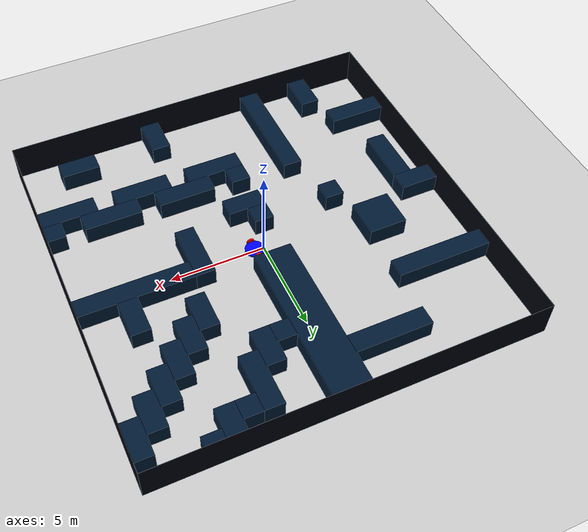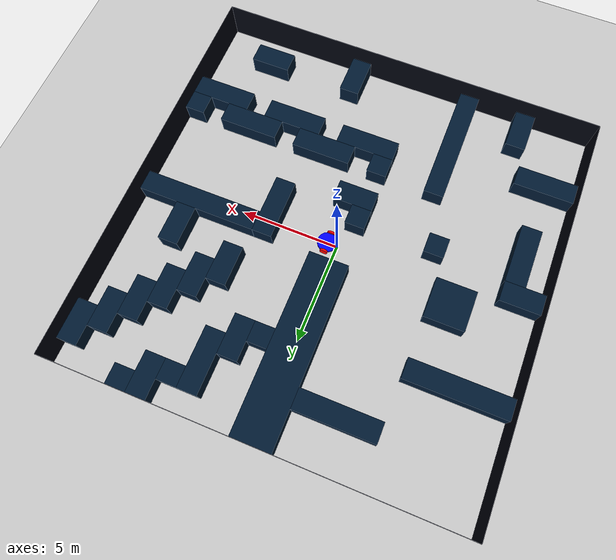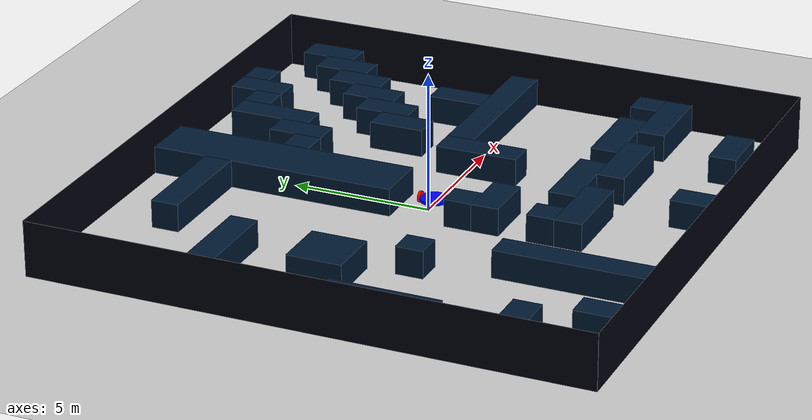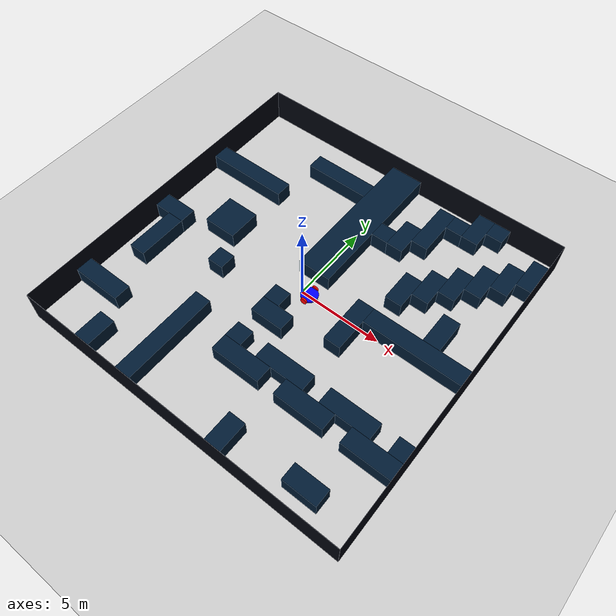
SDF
<sdf version="1.8">
 <world name="maze">
  <model name="ground_plane">
   <static>1</static>
   <link name="link">
    <collision name="collision">
     <geometry><plane><normal>0 0 1</normal><size>100 100</size></plane></geometry>
    </collision>
    <visual name="visual">
     <geometry><plane><normal>0 0 1</normal><size>100 100</size></plane></geometry>
     <material>
      <ambient>0.8 0.8 0.8 1</ambient>
      <diffuse>0.8 0.8 0.8 1</diffuse>
      <specular>0.8 0.8 0.8 1</specular>
     </material>
     <plugin name="__default__" filename="__default__"/>
    </visual>
   </link>
   <plugin name="__default__" filename="__default__"/>
  </model>
  <model name="border">
   <pose>0 0 1 0 0 0</pose>
   <static>true</static>
   <link name="wall1">
    <pose>-10.005 0 0 0 0 0</pose>
    <static>true</static>
    <collision name="wall1_collision"><geometry><box><size>0.01 20 2</size></box></geometry></collision>
    <visual name="wall1_visual">
     <geometry><box><size>0.01 20 2</size></box></geometry>
     <material>
      <ambient>0.1 0.1 0.1 1</ambient>
      <diffuse>0 0.01 0.05 1</diffuse>
      <specular>0 0.01 0.05 1</specular>
     </material>
    </visual>
   </link>
   <link name="wall2">
    <pose>10.005 0 0 0 0 0</pose>
    <static>true</static>
    <collision name="wall2_collision"><geometry><box><size>0.01 20 2</size></box></geometry></collision>
    <visual name="wall2_visual">
     <geometry><box><size>0.01 20 2</size></box></geometry>
     <material>
      <ambient>0.1 0.1 0.1 1</ambient>
      <diffuse>0 0.01 0.05 1</diffuse>
      <specular>0 0.01 0.05 1</specular>
     </material>
    </visual>
   </link>
   <link name="wall3">
    <pose>0 10.005 0 0 0 0</pose>
    <static>true</static>
    <collision name="wall3_collision"><geometry><box><size>20 0.01 2</size></box></geometry></collision>
    <visual name="wall3_visual">
     <geometry><box><size>20 0.01 2</size></box></geometry>
     <material>
      <ambient>0.1 0.1 0.1 1</ambient>
      <diffuse>0 0.01 0.05 1</diffuse>
      <specular>0 0.01 0.05 1</specular>
     </material>
    </visual>
   </link>
   <link name="wall4">
    <pose>0 -10.005 0 0 0 0</pose>
    <static>true</static>
    <collision name="wall4_collision">
     <geometry><box><size>20 0.01 2</size></box></geometry>
     <material>
      <ambient>0.1 0.1 0.1 1</ambient>
      <diffuse>0 0.01 0.05 1</diffuse>
      <specular>0 0.01 0.05 1</specular>
     </material>
    </collision>
    <visual name="wall4_visual">
     <geometry><box><size>20 0.01 2</size></box></geometry>
     <material>
      <ambient>0.1 0.1 0.1 1</ambient>
      <diffuse>0 0.01 0.05 1</diffuse>
      <specular>0 0.01 0.05 1</specular>
     </material>
    </visual>
   </link>
  </model>
  <model name="obstacles">
   <pose>0 0 0.5 0 0 0</pose>
   <static>true</static>
   <link name="wall1">
    <pose>-6.5 -9 0 0 0 0</pose>
    <static>true</static>
    <collision name="wall1_collision"><geometry><box><size>1 2 1</size></box></geometry></collision>
    <visual name="wall1_visual">
     <geometry><box><size>1 2 1</size></box></geometry>
     <material>
      <ambient>0.1 0.1 0.1 1</ambient>
      <diffuse>0 0.1 0.2 1</diffuse>
      <specular>0 0.01 0.05 1</specular>
     </material>
    </visual>
   </link>
   <link name="wall2">
    <pose>-8.5 -6.5 0 0 0 0</pose>
    <static>true</static>
    <collision name="wall2_collision"><geometry><box><size>3 1 1</size></box></geometry></collision>
    <visual name="wall2_visual">
     <geometry><box><size>3 1 1</size></box></geometry>
     <material>
      <ambient>0.1 0.1 0.1 1</ambient>
      <diffuse>0 0.1 0.2 1</diffuse>
      <specular>0 0.01 0.05 1</specular>
     </material>
    </visual>
   </link>
   <link name="wall3">
    <pose>-3.5 -7 0 0 0 0</pose>
    <static>true</static>
    <collision name="wall3_collision"><geometry><box><size>1 6 1</size></box></geometry></collision>
    <visual name="wall3_visual">
     <geometry><box><size>1 6 1</size></box></geometry>
     <material>
      <ambient>0.1 0.1 0.1 1</ambient>
      <diffuse>0 0.1 0.2 1</diffuse>
      <specular>0 0.01 0.05 1</specular>
     </material>
    </visual>
   </link>
   <link name="wall4">
    <pose>2.5 -9 0 0 0 0</pose>
    <static>true</static>
    <collision name="wall4_collision"><geometry><box><size>1 2 1</size></box></geometry></collision>
    <visual name="wall4_visual">
     <geometry><box><size>1 2 1</size></box></geometry>
     <material>
      <ambient>0.1 0.1 0.1 1</ambient>
      <diffuse>0 0.1 0.2 1</diffuse>
      <specular>0 0.01 0.05 1</specular>
     </material>
    </visual>
   </link>
   <link name="wall5">
    <pose>7 -8.5 0 0 0 0</pose>
    <static>true</static>
    <collision name="wall5_collision"><geometry><box><size>2 1 1</size></box></geometry></collision>
    <visual name="wall5_visual">
     <geometry><box><size>2 1 1</size></box></geometry>
     <material>
      <ambient>0.1 0.1 0.1 1</ambient>
      <diffuse>0 0.1 0.2 1</diffuse>
      <specular>0 0.01 0.05 1</specular>
     </material>
    </visual>
   </link>
   <link name="wall6">
    <pose>-9 -0.5 0 0 0 0</pose>
    <static>true</static>
    <collision name="wall6_collision"><geometry><box><size>2 1 1</size></box></geometry></collision>
    <visual name="wall6_visual">
     <geometry><box><size>2 1 1</size></box></geometry>
     <material>
      <ambient>0.1 0.1 0.1 1</ambient>
      <diffuse>0 0.1 0.2 1</diffuse>
      <specular>0 0.01 0.05 1</specular>
     </material>
    </visual>
   </link>
   <link name="wall7">
    <pose>-8.5 -2.5 0 0 0 0</pose>
    <static>true</static>
    <collision name="wall7_collision"><geometry><box><size>1 3 1</size></box></geometry></collision>
    <visual name="wall7_visual">
     <geometry><box><size>1 3 1</size></box></geometry>
     <material>
      <ambient>0.1 0.1 0.1 1</ambient>
      <diffuse>0 0.1 0.2 1</diffuse>
      <specular>0 0.01 0.05 1</specular>
     </material>
    </visual>
   </link>
   <link name="wall8">
    <pose>-4.5 -1.5 0 0 0 0</pose>
    <static>true</static>
    <collision name="wall8_collision"><geometry><box><size>1 1 1</size></box></geometry></collision>
    <visual name="wall8_visual">
     <geometry><box><size>1 1 1</size></box></geometry>
     <material>
      <ambient>0.1 0.1 0.1 1</ambient>
      <diffuse>0 0.1 0.2 1</diffuse>
      <specular>0 0.01 0.05 1</specular>
     </material>
    </visual>
   </link>
   <link name="wall9">
    <pose>-6 1 0 0 0 0</pose>
    <static>true</static>
    <collision name="wall9_collision"><geometry><box><size>2 2 1</size></box></geometry></collision>
    <visual name="wall9_visual">
     <geometry><box><size>2 2 1</size></box></geometry>
     <material>
      <ambient>0.1 0.1 0.1 1</ambient>
      <diffuse>0 0.1 0.2 1</diffuse>
      <specular>0 0.01 0.05 1</specular>
     </material>
    </visual>
   </link>
   <link name="wall10">
    <pose>-7.5 4.5 0 0 0 0</pose>
    <static>true</static>
    <collision name="wall10_collision"><geometry><box><size>5 1 1</size></box></geometry></collision>
    <visual name="wall10_visual">
     <geometry><box><size>5 1 1</size></box></geometry>
     <material>
      <ambient>0.1 0.1 0.1 1</ambient>
      <diffuse>0 0.1 0.2 1</diffuse>
      <specular>0 0.01 0.05 1</specular>
     </material>
    </visual>
   </link>
   <link name="wall11">
    <pose>-3 7.5 0 0 0 0</pose>
    <static>true</static>
    <collision name="wall11_collision"><geometry><box><size>4 1 1</size></box></geometry></collision>
    <visual name="wall11_visual">
     <geometry><box><size>4 1 1</size></box></geometry>
     <material>
      <ambient>0.1 0.1 0.1 1</ambient>
      <diffuse>0 0.1 0.2 1</diffuse>
      <specular>0 0.01 0.05 1</specular>
     </material>
    </visual>
   </link>
   <link name="wall12">
    <pose>0 5.5 0 0 0 0</pose>
    <static>true</static>
    <collision name="wall12_collision"><geometry><box><size>2 9 1</size></box></geometry></collision>
    <visual name="wall12_visual">
     <geometry><box><size>2 9 1</size></box></geometry>
     <material>
      <ambient>0.1 0.1 0.1 1</ambient>
      <diffuse>0 0.1 0.2 1</diffuse>
      <specular>0 0.01 0.05 1</specular>
     </material>
    </visual>
   </link>
   <link name="wall13">
    <pose>0 -2.5 0 0 0 0</pose>
    <static>true</static>
    <collision name="wall13_collision"><geometry><box><size>2 1 1</size></box></geometry></collision>
    <visual name="wall13_visual">
     <geometry><box><size>2 1 1</size></box></geometry>
     <material>
      <ambient>0.1 0.1 0.1 1</ambient>
      <diffuse>0 0.1 0.2 1</diffuse>
      <specular>0 0.01 0.05 1</specular>
     </material>
    </visual>
   </link>
   <link name="wall14">
    <pose>-0.5 -1.5 0 0 0 0</pose>
    <static>true</static>
    <collision name="wall14_collision"><geometry><box><size>1 1 1</size></box></geometry></collision>
    <visual name="wall14_visual">
     <geometry><box><size>1 1 1</size></box></geometry>
     <material>
      <ambient>0.1 0.1 0.1 1</ambient>
      <diffuse>0 0.1 0.2 1</diffuse>
      <specular>0 0.01 0.05 1</specular>
     </material>
    </visual>
   </link>
   <link name="wall15">
    <pose>-0.5 -4.5 0 0 0 0</pose>
    <static>true</static>
    <collision name="wall15_collision"><geometry><box><size>1 1 1</size></box></geometry></collision>
    <visual name="wall15_visual">
     <geometry><box><size>1 1 1</size></box></geometry>
     <material>
      <ambient>0.1 0.1 0.1 1</ambient>
      <diffuse>0 0.1 0.2 1</diffuse>
      <specular>0 0.01 0.05 1</specular>
     </material>
    </visual>
   </link>
   <link name="wall16">
    <pose>0.5 -5.5 0 0 0 0</pose>
    <static>true</static>
    <collision name="wall16_collision"><geometry><box><size>3 1 1</size></box></geometry></collision>
    <visual name="wall16_visual">
     <geometry><box><size>3 1 1</size></box></geometry>
     <material>
      <ambient>0.1 0.1 0.1 1</ambient>
      <diffuse>0 0.1 0.2 1</diffuse>
      <specular>0 0.01 0.05 1</specular>
     </material>
    </visual>
   </link>
   <link name="wall17">
    <pose>2.5 -4.5 0 0 0 0</pose>
    <static>true</static>
    <collision name="wall17_collision"><geometry><box><size>3 1 1</size></box></geometry></collision>
    <visual name="wall17_visual">
     <geometry><box><size>3 1 1</size></box></geometry>
     <material>
      <ambient>0.1 0.1 0.1 1</ambient>
      <diffuse>0 0.1 0.2 1</diffuse>
      <specular>0 0.01 0.05 1</specular>
     </material>
    </visual>
   </link>
   <link name="wall18">
    <pose>4.5 -5.5 0 0 0 0</pose>
    <static>true</static>
    <collision name="wall18_collision"><geometry><box><size>3 1 1</size></box></geometry></collision>
    <visual name="wall18_visual">
     <geometry><box><size>3 1 1</size></box></geometry>
     <material>
      <ambient>0.1 0.1 0.1 1</ambient>
      <diffuse>0 0.1 0.2 1</diffuse>
      <specular>0 0.01 0.05 1</specular>
     </material>
    </visual>
   </link>
   <link name="wall19">
    <pose>6.5 -4.5 0 0 0 0</pose>
    <static>true</static>
    <collision name="wall19_collision"><geometry><box><size>3 1 1</size></box></geometry></collision>
    <visual name="wall19_visual">
     <geometry><box><size>3 1 1</size></box></geometry>
     <material>
      <ambient>0.1 0.1 0.1 1</ambient>
      <diffuse>0 0.1 0.2 1</diffuse>
      <specular>0 0.01 0.05 1</specular>
     </material>
    </visual>
   </link>
   <link name="wall20">
    <pose>8.5 -5.5 0 0 0 0</pose>
    <static>true</static>
    <collision name="wall20_collision"><geometry><box><size>3 1 1</size></box></geometry></collision>
    <visual name="wall20_visual">
     <geometry><box><size>3 1 1</size></box></geometry>
     <material>
      <ambient>0.1 0.1 0.1 1</ambient>
      <diffuse>0 0.1 0.2 1</diffuse>
      <specular>0 0.01 0.05 1</specular>
     </material>
    </visual>
   </link>
   <link name="wall21">
    <pose>9.5 -4.5 0 0 0 0</pose>
    <static>true</static>
    <collision name="wall21_collision"><geometry><box><size>1 1 1</size></box></geometry></collision>
    <visual name="wall21_visual">
     <geometry><box><size>1 1 1</size></box></geometry>
     <material>
      <ambient>0.1 0.1 0.1 1</ambient>
      <diffuse>0 0.1 0.2 1</diffuse>
      <specular>0 0.01 0.05 1</specular>
     </material>
    </visual>
   </link>
   <link name="wall22">
    <pose>3.5 -0.5 0 0 0 0</pose>
    <static>true</static>
    <collision name="wall22_collision"><geometry><box><size>1 3 1</size></box></geometry></collision>
    <visual name="wall22_visual">
     <geometry><box><size>1 3 1</size></box></geometry>
     <material>
      <ambient>0.1 0.1 0.1 1</ambient>
      <diffuse>0 0.1 0.2 1</diffuse>
      <specular>0 0.01 0.05 1</specular>
     </material>
    </visual>
   </link>
   <link name="wall23">
    <pose>7 0.5 0 0 0 0</pose>
    <static>true</static>
    <collision name="wall23_collision"><geometry><box><size>6 1 1</size></box></geometry></collision>
    <visual name="wall23_visual">
     <geometry><box><size>6 1 1</size></box></geometry>
     <material>
      <ambient>0.1 0.1 0.1 1</ambient>
      <diffuse>0 0.1 0.2 1</diffuse>
      <specular>0 0.01 0.05 1</specular>
     </material>
    </visual>
   </link>
   <link name="wall24">
    <pose>7.5 2 0 0 0 0</pose>
    <static>true</static>
    <collision name="wall24_collision"><geometry><box><size>1 2 1</size></box></geometry></collision>
    <visual name="wall24_visual">
     <geometry><box><size>1 2 1</size></box></geometry>
     <material>
      <ambient>0.1 0.1 0.1 1</ambient>
      <diffuse>0 0.1 0.2 1</diffuse>
      <specular>0 0.01 0.05 1</specular>
     </material>
    </visual>
   </link>
   <link name="wall25">
    <pose>1.5 5.5 0 0 0 0</pose>
    <static>true</static>
    <collision name="wall25_collision"><geometry><box><size>1 1 1</size></box></geometry></collision>
    <visual name="wall25_visual">
     <geometry><box><size>1 1 1</size></box></geometry>
     <material>
      <ambient>0.1 0.1 0.1 1</ambient>
      <diffuse>0 0.1 0.2 1</diffuse>
      <specular>0 0.01 0.05 1</specular>
     </material>
    </visual>
   </link>
   <link name="wall26">
    <pose>2.5 6 0 0 0 0</pose>
    <static>true</static>
    <collision name="wall26_collision"><geometry><box><size>1 2 1</size></box></geometry></collision>
    <visual name="wall26_visual">
     <geometry><box><size>1 2 1</size></box></geometry>
     <material>
      <ambient>0.1 0.1 0.1 1</ambient>
      <diffuse>0 0.1 0.2 1</diffuse>
      <specular>0 0.01 0.05 1</specular>
     </material>
    </visual>
   </link>
   <link name="wall27">
    <pose>3.5 7.5 0 0 0 0</pose>
    <static>true</static>
    <collision name="wall27_collision"><geometry><box><size>1 3 1</size></box></geometry></collision>
    <visual name="wall27_visual">
     <geometry><box><size>1 3 1</size></box></geometry>
     <material>
      <ambient>0.1 0.1 0.1 1</ambient>
      <diffuse>0 0.1 0.2 1</diffuse>
      <specular>0 0.01 0.05 1</specular>
     </material>
    </visual>
   </link>
   <link name="wall28">
    <pose>4.5 8.5 0 0 0 0</pose>
    <static>true</static>
    <collision name="wall28_collision"><geometry><box><size>1 1 1</size></box></geometry></collision>
    <visual name="wall28_visual">
     <geometry><box><size>1 1 1</size></box></geometry>
     <material>
      <ambient>0.1 0.1 0.1 1</ambient>
      <diffuse>0 0.1 0.2 1</diffuse>
      <specular>0 0.01 0.05 1</specular>
     </material>
    </visual>
   </link>
   <link name="wall29">
    <pose>5.5 9 0 0 0 0</pose>
    <static>true</static>
    <collision name="wall29_collision"><geometry><box><size>1 2 1</size></box></geometry></collision>
    <visual name="wall29_visual">
     <geometry><box><size>1 2 1</size></box></geometry>
     <material>
      <ambient>0.1 0.1 0.1 1</ambient>
      <diffuse>0 0.1 0.2 1</diffuse>
      <specular>0 0.01 0.05 1</specular>
     </material>
    </visual>
   </link>
   <link name="wall30">
    <pose>6.5 9.5 0 0 0 0</pose>
    <static>true</static>
    <collision name="wall30_collision"><geometry><box><size>1 1 1</size></box></geometry></collision>
    <visual name="wall30_visual">
     <geometry><box><size>1 1 1</size></box></geometry>
     <material>
      <ambient>0.1 0.1 0.1 1</ambient>
      <diffuse>0 0.1 0.2 1</diffuse>
      <specular>0 0.01 0.05 1</specular>
     </material>
    </visual>
   </link>
   <link name="wall31">
    <pose>4.5 3 0 0 0 0</pose>
    <static>true</static>
    <collision name="wall31_collision"><geometry><box><size>1 2 1</size></box></geometry></collision>
    <visual name="wall31_visual">
     <geometry><box><size>1 2 1</size></box></geometry>
     <material>
      <ambient>0.1 0.1 0.1 1</ambient>
      <diffuse>0 0.1 0.2 1</diffuse>
      <specular>0 0.01 0.05 1</specular>
     </material>
    </visual>
   </link>
   <link name="wall32">
    <pose>5.5 4 0 0 0 0</pose>
    <static>true</static>
    <collision name="wall32_collision"><geometry><box><size>1 2 1</size></box></geometry></collision>
    <visual name="wall32_visual">
     <geometry><box><size>1 2 1</size></box></geometry>
     <material>
      <ambient>0.1 0.1 0.1 1</ambient>
      <diffuse>0 0.1 0.2 1</diffuse>
      <specular>0 0.01 0.05 1</specular>
     </material>
    </visual>
   </link>
   <link name="wall33">
    <pose>6.5 5 0 0 0 0</pose>
    <static>true</static>
    <collision name="wall33_collision"><geometry><box><size>1 2 1</size></box></geometry></collision>
    <visual name="wall33_visual">
     <geometry><box><size>1 2 1</size></box></geometry>
     <material>
      <ambient>0.1 0.1 0.1 1</ambient>
      <diffuse>0 0.1 0.2 1</diffuse>
      <specular>0 0.01 0.05 1</specular>
     </material>
    </visual>
   </link>
   <link name="wall34">
    <pose>7.5 6 0 0 0 0</pose>
    <static>true</static>
    <collision name="wall34_collision"><geometry><box><size>1 2 1</size></box></geometry></collision>
    <visual name="wall34_visual">
     <geometry><box><size>1 2 1</size></box></geometry>
     <material>
      <ambient>0.1 0.1 0.1 1</ambient>
      <diffuse>0 0.1 0.2 1</diffuse>
      <specular>0 0.01 0.05 1</specular>
     </material>
    </visual>
   </link>
   <link name="wall35">
    <pose>8.5 7 0 0 0 0</pose>
    <static>true</static>
    <collision name="wall35_collision"><geometry><box><size>1 2 1</size></box></geometry></collision>
    <visual name="wall35_visual">
     <geometry><box><size>1 2 1</size></box></geometry>
     <material>
      <ambient>0.1 0.1 0.1 1</ambient>
      <diffuse>0 0.1 0.2 1</diffuse>
      <specular>0 0.01 0.05 1</specular>
     </material>
    </visual>
   </link>
   <link name="wall36">
    <pose>9.5 8 0 0 0 0</pose>
    <static>true</static>
    <collision name="wall36_collision"><geometry><box><size>1 2 1</size></box></geometry></collision>
    <visual name="wall36_visual">
     <geometry><box><size>1 2 1</size></box></geometry>
     <material>
      <ambient>0.1 0.1 0.1 1</ambient>
      <diffuse>0 0.1 0.2 1</diffuse>
      <specular>0 0.01 0.05 1</specular>
     </material>
    </visual>
   </link>
  </model>
  <model name="vehicle_blue" canonical_link="chassis">
   <pose relative_to="world">0 0 0 0 0 0</pose>
   <frame name="lidar_frame" attached_to="chassis"><pose>0.8 0 0.5 0 0 0</pose></frame>
   <link name="chassis">
    <pose relative_to="__model__">0.5 0 0.2 0 0 0</pose>
    <inertial>
     <mass>1.14395</mass>
     <inertia><ixx>0.043333</ixx><ixy>0</ixy><ixz>0</ixz><iyy>0.043333</iyy><iyz>0</iyz><izz>0.08</izz></inertia>
    </inertial>
    <visual name="visual">
     <geometry><cylinder><radius>0.5</radius><length>0.1</length></cylinder></geometry>
     <material>
      <ambient>0.0 0.0 1.0 1</ambient>
      <diffuse>0.0 0.0 1.0 1</diffuse>
      <specular>0.0 0.0 1.0 1</specular>
     </material>
    </visual>
    <collision name="collision">
     <geometry><cylinder><radius>0.5</radius><length>0.1</length></cylinder></geometry>
    </collision>
    <sensor name="gpu_lidar" type="gpu_lidar">
     <pose relative_to="lidar_frame">0 0 0 0 -0 0</pose>
     <topic>lidar</topic>
     <update_rate>10</update_rate>
     <ray>
      <scan>
       <horizontal>
        <samples>640</samples>
        <resolution>1</resolution>
        <min_angle>-1.396263</min_angle>
        <max_angle>1.396263</max_angle>
       </horizontal>
       <vertical>
        <samples>1</samples>
        <resolution>0.01</resolution>
        <min_angle>0</min_angle>
        <max_angle>0</max_angle>
       </vertical>
      </scan>
      <range><min>0.08</min><max>10.0</max><resolution>0.01</resolution></range>
     </ray>
     <always_on>1</always_on>
     <visualize>true</visualize>
    </sensor>
   </link>
   <link name="left_wheel">
    <pose relative_to="chassis">0 0.5 0 -1.5707 0 0</pose>
    <inertial>
     <mass>1</mass>
     <inertia><ixx>0.043333</ixx><ixy>0</ixy><ixz>0</ixz><iyy>0.043333</iyy><iyz>0</iyz><izz>0.08</izz></inertia>
    </inertial>
    <visual name="visual">
     <geometry><cylinder><radius>0.2</radius><length>0.1</length></cylinder></geometry>
     <material>
      <ambient>1.0 0.0 0.0 1</ambient>
      <diffuse>1.0 0.0 0.0 1</diffuse>
      <specular>1.0 0.0 0.0 1</specular>
     </material>
    </visual>
    <collision name="collision">
     <geometry><cylinder><radius>0.2</radius><length>0.1</length></cylinder></geometry>
    </collision>
   </link>
   <link name="right_wheel">
    <pose relative_to="chassis">0 -0.5 0 -1.5707 0 0</pose>
    <inertial>
     <mass>1</mass>
     <inertia><ixx>0.043333</ixx><ixy>0</ixy><ixz>0</ixz><iyy>0.043333</iyy><iyz>0</iyz><izz>0.08</izz></inertia>
    </inertial>
    <visual name="visual">
     <geometry><cylinder><radius>0.2</radius><length>0.1</length></cylinder></geometry>
     <material>
      <ambient>1.0 0.0 0.0 1</ambient>
      <diffuse>1.0 0.0 0.0 1</diffuse>
      <specular>1.0 0.0 0.0 1</specular>
     </material>
    </visual>
    <collision name="collision">
     <geometry><cylinder><radius>0.2</radius><length>0.1</length></cylinder></geometry>
    </collision>
   </link>
   <frame name="front_caster_frame" attached_to="chassis"><pose>0.45 0 -0.1 0 0 0</pose></frame>
   <frame name="rear_caster_frame" attached_to="chassis"><pose>-0.45 0 -0.1 0 0 0</pose></frame>
   <link name="front_caster">
    <pose relative_to="front_caster_frame"/>
    <inertial>
     <mass>1</mass>
     <inertia><ixx>0.016</ixx><ixy>0</ixy><ixz>0</ixz><iyy>0.016</iyy><iyz>0</iyz><izz>0.016</izz></inertia>
    </inertial>
    <visual name="visual">
     <geometry><sphere><radius>0.1</radius></sphere></geometry>
     <material>
      <ambient>0.0 1 0.0 1</ambient>
      <diffuse>0.0 1 0.0 1</diffuse>
      <specular>0.0 1 0.0 1</specular>
     </material>
    </visual>
    <collision name="collision"><geometry><sphere><radius>0.1</radius></sphere></geometry></collision>
   </link>
   <joint name="front_caster_wheel" type="ball"><parent>chassis</parent><child>front_caster</child></joint>
   <link name="rear_caster">
    <pose relative_to="rear_caster_frame"/>
    <inertial>
     <mass>1</mass>
     <inertia><ixx>0.016</ixx><ixy>0</ixy><ixz>0</ixz><iyy>0.016</iyy><iyz>0</iyz><izz>0.016</izz></inertia>
    </inertial>
    <visual name="visual">
     <geometry><sphere><radius>0.1</radius></sphere></geometry>
     <material>
      <ambient>0.0 1 0.0 1</ambient>
      <diffuse>0.0 1 0.0 1</diffuse>
      <specular>0.0 1 0.0 1</specular>
     </material>
    </visual>
    <collision name="collision"><geometry><sphere><radius>0.1</radius></sphere></geometry></collision>
   </link>
   <joint name="rear_caster_wheel" type="ball"><parent>chassis</parent><child>rear_caster</child></joint>
   <joint name="left_wheel_joint" type="revolute">
    <pose relative_to="left_wheel"/>
    <parent>chassis</parent>
    <child>left_wheel</child>
    <axis>
     <xyz expressed_in="__model__">0 1 0</xyz>
     <limit><lower>-1.79769e+308</lower><upper>1.79769e+308</upper></limit>
    </axis>
   </joint>
   <joint name="right_wheel_joint" type="revolute">
    <pose relative_to="right_wheel"/>
    <parent>chassis</parent>
    <child>right_wheel</child>
    <axis>
     <xyz expressed_in="__model__">0 1 0</xyz>
     <limit><lower>-1.79769e+308</lower><upper>1.79769e+308</upper></limit>
    </axis>
   </joint>
   <plugin name="gz::sim::systems::OdometryPublisher" filename="gz-sim-odometry-publisher-system">
    <odom_topic>odom</odom_topic>
   </plugin>
   <plugin filename="gz-sim-diff-drive-system" name="gz::sim::systems::DiffDrive">
    <left_joint>left_wheel_joint</left_joint>
    <right_joint>right_wheel_joint</right_joint>
    <wheel_separation>1.0</wheel_separation>
    <wheel_radius>0.2</wheel_radius>
    <odom_publish_frequency>1</odom_publish_frequency>
    <topic>cmd_vel</topic>
   </plugin>
  </model>
 </world>
</sdf>
